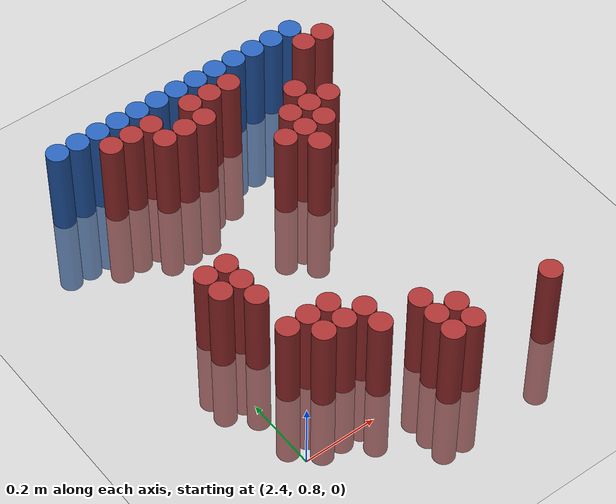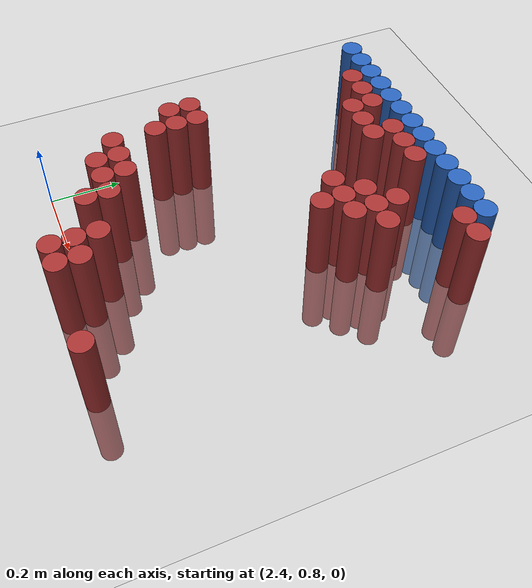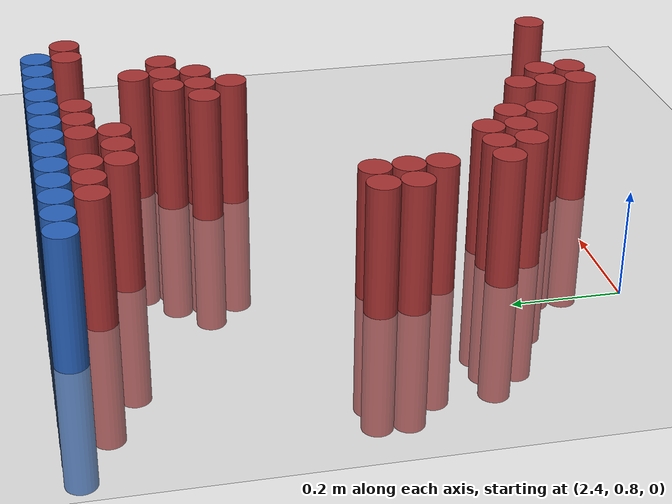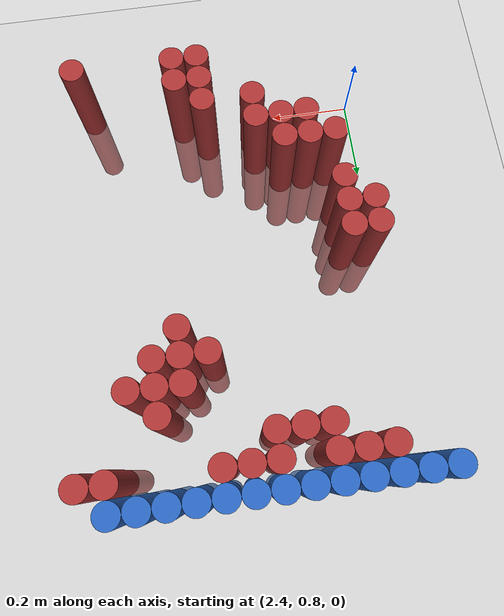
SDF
<sdf version="1.6">
 <world name="default">
  <model name="ground_plane">
   <static>1</static>
   <link name="link">
    <collision name="collision">
     <geometry><plane><normal>0 0 1</normal><size>100 100</size></plane></geometry>
     <surface><friction><ode><mu>100</mu><mu2>50</mu2></ode></friction></surface>
    </collision>
    <visual name="visual">
     <cast_shadows>0</cast_shadows>
     <geometry><plane><normal>0 0 1</normal><size>100 100</size></plane></geometry>
     <material>
      <script><uri>file://media/materials/scripts/gazebo.material</uri><name>Gazebo/Grey</name></script>
     </material>
    </visual>
   </link>
  </model>
  <model name="unit_cylinder_100">
   <static>1</static>
   <pose>2.370000 1.770000 0.000000 0.000000 0.000000 0.000000</pose>
   <link name="link">
    <inertial>
     <mass>1</mass>
     <inertia><ixx>0.145833</ixx><ixy>0</ixy><ixz>0</ixz><iyy>0.145833</iyy><iyz>0</iyz><izz>0.125</izz></inertia>
    </inertial>
    <collision name="collision">
     <geometry><cylinder><radius>0.030000</radius><length>0.5</length></cylinder></geometry>
    </collision>
    <visual name="visual">
     <geometry><cylinder><radius>0.030000</radius><length>0.5</length></cylinder></geometry>
     <material>
      <ambient>0.152000 0.379000 0.720000 1</ambient>
      <diffuse>0.152000 0.379000 0.720000 1</diffuse>
     </material>
     <material>
      <script><name>Gazebo/Grey</name><uri>file://media/materials/scripts/gazebo.material</uri></script>
     </material>
    </visual>
   </link>
  </model>
  <model name="unit_cylinder_101">
   <static>1</static>
   <pose>2.430000 1.770000 0.000000 0.000000 0.000000 0.000000</pose>
   <link name="link">
    <inertial>
     <mass>1</mass>
     <inertia><ixx>0.145833</ixx><ixy>0</ixy><ixz>0</ixz><iyy>0.145833</iyy><iyz>0</iyz><izz>0.125</izz></inertia>
    </inertial>
    <collision name="collision">
     <geometry><cylinder><radius>0.030000</radius><length>0.5</length></cylinder></geometry>
    </collision>
    <visual name="visual">
     <geometry><cylinder><radius>0.030000</radius><length>0.5</length></cylinder></geometry>
     <material>
      <ambient>0.152000 0.379000 0.720000 1</ambient>
      <diffuse>0.152000 0.379000 0.720000 1</diffuse>
     </material>
     <material>
      <script><name>Gazebo/Grey</name><uri>file://media/materials/scripts/gazebo.material</uri></script>
     </material>
    </visual>
   </link>
  </model>
  <model name="unit_cylinder_102">
   <static>1</static>
   <pose>2.490000 1.770000 0.000000 0.000000 0.000000 0.000000</pose>
   <link name="link">
    <inertial>
     <mass>1</mass>
     <inertia><ixx>0.145833</ixx><ixy>0</ixy><ixz>0</ixz><iyy>0.145833</iyy><iyz>0</iyz><izz>0.125</izz></inertia>
    </inertial>
    <collision name="collision">
     <geometry><cylinder><radius>0.030000</radius><length>0.5</length></cylinder></geometry>
    </collision>
    <visual name="visual">
     <geometry><cylinder><radius>0.030000</radius><length>0.5</length></cylinder></geometry>
     <material>
      <ambient>0.152000 0.379000 0.720000 1</ambient>
      <diffuse>0.152000 0.379000 0.720000 1</diffuse>
     </material>
     <material>
      <script><name>Gazebo/Grey</name><uri>file://media/materials/scripts/gazebo.material</uri></script>
     </material>
    </visual>
   </link>
  </model>
  <model name="unit_cylinder_103">
   <static>1</static>
   <pose>2.550000 1.770000 0.000000 0.000000 0.000000 0.000000</pose>
   <link name="link">
    <inertial>
     <mass>1</mass>
     <inertia><ixx>0.145833</ixx><ixy>0</ixy><ixz>0</ixz><iyy>0.145833</iyy><iyz>0</iyz><izz>0.125</izz></inertia>
    </inertial>
    <collision name="collision">
     <geometry><cylinder><radius>0.030000</radius><length>0.5</length></cylinder></geometry>
    </collision>
    <visual name="visual">
     <geometry><cylinder><radius>0.030000</radius><length>0.5</length></cylinder></geometry>
     <material>
      <ambient>0.152000 0.379000 0.720000 1</ambient>
      <diffuse>0.152000 0.379000 0.720000 1</diffuse>
     </material>
     <material>
      <script><name>Gazebo/Grey</name><uri>file://media/materials/scripts/gazebo.material</uri></script>
     </material>
    </visual>
   </link>
  </model>
  <model name="unit_cylinder_104">
   <static>1</static>
   <pose>2.610000 1.770000 0.000000 0.000000 0.000000 0.000000</pose>
   <link name="link">
    <inertial>
     <mass>1</mass>
     <inertia><ixx>0.145833</ixx><ixy>0</ixy><ixz>0</ixz><iyy>0.145833</iyy><iyz>0</iyz><izz>0.125</izz></inertia>
    </inertial>
    <collision name="collision">
     <geometry><cylinder><radius>0.030000</radius><length>0.5</length></cylinder></geometry>
    </collision>
    <visual name="visual">
     <geometry><cylinder><radius>0.030000</radius><length>0.5</length></cylinder></geometry>
     <material>
      <ambient>0.152000 0.379000 0.720000 1</ambient>
      <diffuse>0.152000 0.379000 0.720000 1</diffuse>
     </material>
     <material>
      <script><name>Gazebo/Grey</name><uri>file://media/materials/scripts/gazebo.material</uri></script>
     </material>
    </visual>
   </link>
  </model>
  <model name="unit_cylinder_105">
   <static>1</static>
   <pose>2.670000 1.770000 0.000000 0.000000 0.000000 0.000000</pose>
   <link name="link">
    <inertial>
     <mass>1</mass>
     <inertia><ixx>0.145833</ixx><ixy>0</ixy><ixz>0</ixz><iyy>0.145833</iyy><iyz>0</iyz><izz>0.125</izz></inertia>
    </inertial>
    <collision name="collision">
     <geometry><cylinder><radius>0.030000</radius><length>0.5</length></cylinder></geometry>
    </collision>
    <visual name="visual">
     <geometry><cylinder><radius>0.030000</radius><length>0.5</length></cylinder></geometry>
     <material>
      <ambient>0.152000 0.379000 0.720000 1</ambient>
      <diffuse>0.152000 0.379000 0.720000 1</diffuse>
     </material>
     <material>
      <script><name>Gazebo/Grey</name><uri>file://media/materials/scripts/gazebo.material</uri></script>
     </material>
    </visual>
   </link>
  </model>
  <model name="unit_cylinder_106">
   <static>1</static>
   <pose>2.730000 1.770000 0.000000 0.000000 0.000000 0.000000</pose>
   <link name="link">
    <inertial>
     <mass>1</mass>
     <inertia><ixx>0.145833</ixx><ixy>0</ixy><ixz>0</ixz><iyy>0.145833</iyy><iyz>0</iyz><izz>0.125</izz></inertia>
    </inertial>
    <collision name="collision">
     <geometry><cylinder><radius>0.030000</radius><length>0.5</length></cylinder></geometry>
    </collision>
    <visual name="visual">
     <geometry><cylinder><radius>0.030000</radius><length>0.5</length></cylinder></geometry>
     <material>
      <ambient>0.152000 0.379000 0.720000 1</ambient>
      <diffuse>0.152000 0.379000 0.720000 1</diffuse>
     </material>
     <material>
      <script><name>Gazebo/Grey</name><uri>file://media/materials/scripts/gazebo.material</uri></script>
     </material>
    </visual>
   </link>
  </model>
  <model name="unit_cylinder_107">
   <static>1</static>
   <pose>2.790000 1.770000 0.000000 0.000000 0.000000 0.000000</pose>
   <link name="link">
    <inertial>
     <mass>1</mass>
     <inertia><ixx>0.145833</ixx><ixy>0</ixy><ixz>0</ixz><iyy>0.145833</iyy><iyz>0</iyz><izz>0.125</izz></inertia>
    </inertial>
    <collision name="collision">
     <geometry><cylinder><radius>0.030000</radius><length>0.5</length></cylinder></geometry>
    </collision>
    <visual name="visual">
     <geometry><cylinder><radius>0.030000</radius><length>0.5</length></cylinder></geometry>
     <material>
      <ambient>0.152000 0.379000 0.720000 1</ambient>
      <diffuse>0.152000 0.379000 0.720000 1</diffuse>
     </material>
     <material>
      <script><name>Gazebo/Grey</name><uri>file://media/materials/scripts/gazebo.material</uri></script>
     </material>
    </visual>
   </link>
  </model>
  <model name="unit_cylinder_108">
   <static>1</static>
   <pose>2.850000 1.770000 0.000000 0.000000 0.000000 0.000000</pose>
   <link name="link">
    <inertial>
     <mass>1</mass>
     <inertia><ixx>0.145833</ixx><ixy>0</ixy><ixz>0</ixz><iyy>0.145833</iyy><iyz>0</iyz><izz>0.125</izz></inertia>
    </inertial>
    <collision name="collision">
     <geometry><cylinder><radius>0.030000</radius><length>0.5</length></cylinder></geometry>
    </collision>
    <visual name="visual">
     <geometry><cylinder><radius>0.030000</radius><length>0.5</length></cylinder></geometry>
     <material>
      <ambient>0.152000 0.379000 0.720000 1</ambient>
      <diffuse>0.152000 0.379000 0.720000 1</diffuse>
     </material>
     <material>
      <script><name>Gazebo/Grey</name><uri>file://media/materials/scripts/gazebo.material</uri></script>
     </material>
    </visual>
   </link>
  </model>
  <model name="unit_cylinder_109">
   <static>1</static>
   <pose>2.910000 1.770000 0.000000 0.000000 0.000000 0.000000</pose>
   <link name="link">
    <inertial>
     <mass>1</mass>
     <inertia><ixx>0.145833</ixx><ixy>0</ixy><ixz>0</ixz><iyy>0.145833</iyy><iyz>0</iyz><izz>0.125</izz></inertia>
    </inertial>
    <collision name="collision">
     <geometry><cylinder><radius>0.030000</radius><length>0.5</length></cylinder></geometry>
    </collision>
    <visual name="visual">
     <geometry><cylinder><radius>0.030000</radius><length>0.5</length></cylinder></geometry>
     <material>
      <ambient>0.152000 0.379000 0.720000 1</ambient>
      <diffuse>0.152000 0.379000 0.720000 1</diffuse>
     </material>
     <material>
      <script><name>Gazebo/Grey</name><uri>file://media/materials/scripts/gazebo.material</uri></script>
     </material>
    </visual>
   </link>
  </model>
  <model name="unit_cylinder_110">
   <static>1</static>
   <pose>2.970000 1.770000 0.000000 0.000000 0.000000 0.000000</pose>
   <link name="link">
    <inertial>
     <mass>1</mass>
     <inertia><ixx>0.145833</ixx><ixy>0</ixy><ixz>0</ixz><iyy>0.145833</iyy><iyz>0</iyz><izz>0.125</izz></inertia>
    </inertial>
    <collision name="collision">
     <geometry><cylinder><radius>0.030000</radius><length>0.5</length></cylinder></geometry>
    </collision>
    <visual name="visual">
     <geometry><cylinder><radius>0.030000</radius><length>0.5</length></cylinder></geometry>
     <material>
      <ambient>0.152000 0.379000 0.720000 1</ambient>
      <diffuse>0.152000 0.379000 0.720000 1</diffuse>
     </material>
     <material>
      <script><name>Gazebo/Grey</name><uri>file://media/materials/scripts/gazebo.material</uri></script>
     </material>
    </visual>
   </link>
  </model>
  <model name="unit_cylinder_111">
   <static>1</static>
   <pose>3.030000 1.770000 0.000000 0.000000 0.000000 0.000000</pose>
   <link name="link">
    <inertial>
     <mass>1</mass>
     <inertia><ixx>0.145833</ixx><ixy>0</ixy><ixz>0</ixz><iyy>0.145833</iyy><iyz>0</iyz><izz>0.125</izz></inertia>
    </inertial>
    <collision name="collision">
     <geometry><cylinder><radius>0.030000</radius><length>0.5</length></cylinder></geometry>
    </collision>
    <visual name="visual">
     <geometry><cylinder><radius>0.030000</radius><length>0.5</length></cylinder></geometry>
     <material>
      <ambient>0.152000 0.379000 0.720000 1</ambient>
      <diffuse>0.152000 0.379000 0.720000 1</diffuse>
     </material>
     <material>
      <script><name>Gazebo/Grey</name><uri>file://media/materials/scripts/gazebo.material</uri></script>
     </material>
    </visual>
   </link>
  </model>
  <model name="unit_cylinder_112">
   <static>1</static>
   <pose>3.090000 1.770000 0.000000 0.000000 0.000000 0.000000</pose>
   <link name="link">
    <inertial>
     <mass>1</mass>
     <inertia><ixx>0.145833</ixx><ixy>0</ixy><ixz>0</ixz><iyy>0.145833</iyy><iyz>0</iyz><izz>0.125</izz></inertia>
    </inertial>
    <collision name="collision">
     <geometry><cylinder><radius>0.030000</radius><length>0.5</length></cylinder></geometry>
    </collision>
    <visual name="visual">
     <geometry><cylinder><radius>0.030000</radius><length>0.5</length></cylinder></geometry>
     <material>
      <ambient>0.152000 0.379000 0.720000 1</ambient>
      <diffuse>0.152000 0.379000 0.720000 1</diffuse>
     </material>
     <material>
      <script><name>Gazebo/Grey</name><uri>file://media/materials/scripts/gazebo.material</uri></script>
     </material>
    </visual>
   </link>
  </model>
  <model name="unit_cylinder_125">
   <static>1</static>
   <pose>2.490000 1.710000 0.000000 0.000000 0.000000 0.000000</pose>
   <link name="link">
    <inertial>
     <mass>1</mass>
     <inertia><ixx>0.145833</ixx><ixy>0</ixy><ixz>0</ixz><iyy>0.145833</iyy><iyz>0</iyz><izz>0.125</izz></inertia>
    </inertial>
    <collision name="collision">
     <geometry><cylinder><radius>0.030000</radius><length>0.5</length></cylinder></geometry>
    </collision>
    <visual name="visual">
     <geometry><cylinder><radius>0.030000</radius><length>0.5</length></cylinder></geometry>
     <material>
      <ambient>0.648000 0.192000 0.192000 1</ambient>
      <diffuse>0.648000 0.192000 0.192000 1</diffuse>
     </material>
     <material>
      <script><name>Gazebo/Grey</name><uri>file://media/materials/scripts/gazebo.material</uri></script>
     </material>
    </visual>
   </link>
  </model>
  <model name="unit_cylinder_126">
   <static>1</static>
   <pose>2.550000 1.710000 0.000000 0.000000 0.000000 0.000000</pose>
   <link name="link">
    <inertial>
     <mass>1</mass>
     <inertia><ixx>0.145833</ixx><ixy>0</ixy><ixz>0</ixz><iyy>0.145833</iyy><iyz>0</iyz><izz>0.125</izz></inertia>
    </inertial>
    <collision name="collision">
     <geometry><cylinder><radius>0.030000</radius><length>0.5</length></cylinder></geometry>
    </collision>
    <visual name="visual">
     <geometry><cylinder><radius>0.030000</radius><length>0.5</length></cylinder></geometry>
     <material>
      <ambient>0.648000 0.192000 0.192000 1</ambient>
      <diffuse>0.648000 0.192000 0.192000 1</diffuse>
     </material>
     <material>
      <script><name>Gazebo/Grey</name><uri>file://media/materials/scripts/gazebo.material</uri></script>
     </material>
    </visual>
   </link>
  </model>
  <model name="unit_cylinder_127">
   <static>1</static>
   <pose>2.610000 1.710000 0.000000 0.000000 0.000000 0.000000</pose>
   <link name="link">
    <inertial>
     <mass>1</mass>
     <inertia><ixx>0.145833</ixx><ixy>0</ixy><ixz>0</ixz><iyy>0.145833</iyy><iyz>0</iyz><izz>0.125</izz></inertia>
    </inertial>
    <collision name="collision">
     <geometry><cylinder><radius>0.030000</radius><length>0.5</length></cylinder></geometry>
    </collision>
    <visual name="visual">
     <geometry><cylinder><radius>0.030000</radius><length>0.5</length></cylinder></geometry>
     <material>
      <ambient>0.648000 0.192000 0.192000 1</ambient>
      <diffuse>0.648000 0.192000 0.192000 1</diffuse>
     </material>
     <material>
      <script><name>Gazebo/Grey</name><uri>file://media/materials/scripts/gazebo.material</uri></script>
     </material>
    </visual>
   </link>
  </model>
  <model name="unit_cylinder_128">
   <static>1</static>
   <pose>2.730000 1.710000 0.000000 0.000000 0.000000 0.000000</pose>
   <link name="link">
    <inertial>
     <mass>1</mass>
     <inertia><ixx>0.145833</ixx><ixy>0</ixy><ixz>0</ixz><iyy>0.145833</iyy><iyz>0</iyz><izz>0.125</izz></inertia>
    </inertial>
    <collision name="collision">
     <geometry><cylinder><radius>0.030000</radius><length>0.5</length></cylinder></geometry>
    </collision>
    <visual name="visual">
     <geometry><cylinder><radius>0.030000</radius><length>0.5</length></cylinder></geometry>
     <material>
      <ambient>0.648000 0.192000 0.192000 1</ambient>
      <diffuse>0.648000 0.192000 0.192000 1</diffuse>
     </material>
     <material>
      <script><name>Gazebo/Grey</name><uri>file://media/materials/scripts/gazebo.material</uri></script>
     </material>
    </visual>
   </link>
  </model>
  <model name="unit_cylinder_129">
   <static>1</static>
   <pose>2.790000 1.710000 0.000000 0.000000 0.000000 0.000000</pose>
   <link name="link">
    <inertial>
     <mass>1</mass>
     <inertia><ixx>0.145833</ixx><ixy>0</ixy><ixz>0</ixz><iyy>0.145833</iyy><iyz>0</iyz><izz>0.125</izz></inertia>
    </inertial>
    <collision name="collision">
     <geometry><cylinder><radius>0.030000</radius><length>0.5</length></cylinder></geometry>
    </collision>
    <visual name="visual">
     <geometry><cylinder><radius>0.030000</radius><length>0.5</length></cylinder></geometry>
     <material>
      <ambient>0.648000 0.192000 0.192000 1</ambient>
      <diffuse>0.648000 0.192000 0.192000 1</diffuse>
     </material>
     <material>
      <script><name>Gazebo/Grey</name><uri>file://media/materials/scripts/gazebo.material</uri></script>
     </material>
    </visual>
   </link>
  </model>
  <model name="unit_cylinder_130">
   <static>1</static>
   <pose>2.850000 1.710000 0.000000 0.000000 0.000000 0.000000</pose>
   <link name="link">
    <inertial>
     <mass>1</mass>
     <inertia><ixx>0.145833</ixx><ixy>0</ixy><ixz>0</ixz><iyy>0.145833</iyy><iyz>0</iyz><izz>0.125</izz></inertia>
    </inertial>
    <collision name="collision">
     <geometry><cylinder><radius>0.030000</radius><length>0.5</length></cylinder></geometry>
    </collision>
    <visual name="visual">
     <geometry><cylinder><radius>0.030000</radius><length>0.5</length></cylinder></geometry>
     <material>
      <ambient>0.648000 0.192000 0.192000 1</ambient>
      <diffuse>0.648000 0.192000 0.192000 1</diffuse>
     </material>
     <material>
      <script><name>Gazebo/Grey</name><uri>file://media/materials/scripts/gazebo.material</uri></script>
     </material>
    </visual>
   </link>
  </model>
  <model name="unit_cylinder_131">
   <static>1</static>
   <pose>3.090000 1.710000 0.000000 0.000000 0.000000 0.000000</pose>
   <link name="link">
    <inertial>
     <mass>1</mass>
     <inertia><ixx>0.145833</ixx><ixy>0</ixy><ixz>0</ixz><iyy>0.145833</iyy><iyz>0</iyz><izz>0.125</izz></inertia>
    </inertial>
    <collision name="collision">
     <geometry><cylinder><radius>0.030000</radius><length>0.5</length></cylinder></geometry>
    </collision>
    <visual name="visual">
     <geometry><cylinder><radius>0.030000</radius><length>0.5</length></cylinder></geometry>
     <material>
      <ambient>0.648000 0.192000 0.192000 1</ambient>
      <diffuse>0.648000 0.192000 0.192000 1</diffuse>
     </material>
     <material>
      <script><name>Gazebo/Grey</name><uri>file://media/materials/scripts/gazebo.material</uri></script>
     </material>
    </visual>
   </link>
  </model>
  <model name="unit_cylinder_132">
   <static>1</static>
   <pose>3.150000 1.710000 0.000000 0.000000 0.000000 0.000000</pose>
   <link name="link">
    <inertial>
     <mass>1</mass>
     <inertia><ixx>0.145833</ixx><ixy>0</ixy><ixz>0</ixz><iyy>0.145833</iyy><iyz>0</iyz><izz>0.125</izz></inertia>
    </inertial>
    <collision name="collision">
     <geometry><cylinder><radius>0.030000</radius><length>0.5</length></cylinder></geometry>
    </collision>
    <visual name="visual">
     <geometry><cylinder><radius>0.030000</radius><length>0.5</length></cylinder></geometry>
     <material>
      <ambient>0.648000 0.192000 0.192000 1</ambient>
      <diffuse>0.648000 0.192000 0.192000 1</diffuse>
     </material>
     <material>
      <script><name>Gazebo/Grey</name><uri>file://media/materials/scripts/gazebo.material</uri></script>
     </material>
    </visual>
   </link>
  </model>
  <model name="unit_cylinder_138">
   <static>1</static>
   <pose>2.610000 1.650000 0.000000 0.000000 0.000000 0.000000</pose>
   <link name="link">
    <inertial>
     <mass>1</mass>
     <inertia><ixx>0.145833</ixx><ixy>0</ixy><ixz>0</ixz><iyy>0.145833</iyy><iyz>0</iyz><izz>0.125</izz></inertia>
    </inertial>
    <collision name="collision">
     <geometry><cylinder><radius>0.030000</radius><length>0.5</length></cylinder></geometry>
    </collision>
    <visual name="visual">
     <geometry><cylinder><radius>0.030000</radius><length>0.5</length></cylinder></geometry>
     <material>
      <ambient>0.648000 0.192000 0.192000 1</ambient>
      <diffuse>0.648000 0.192000 0.192000 1</diffuse>
     </material>
     <material>
      <script><name>Gazebo/Grey</name><uri>file://media/materials/scripts/gazebo.material</uri></script>
     </material>
    </visual>
   </link>
  </model>
  <model name="unit_cylinder_139">
   <static>1</static>
   <pose>2.670000 1.650000 0.000000 0.000000 0.000000 0.000000</pose>
   <link name="link">
    <inertial>
     <mass>1</mass>
     <inertia><ixx>0.145833</ixx><ixy>0</ixy><ixz>0</ixz><iyy>0.145833</iyy><iyz>0</iyz><izz>0.125</izz></inertia>
    </inertial>
    <collision name="collision">
     <geometry><cylinder><radius>0.030000</radius><length>0.5</length></cylinder></geometry>
    </collision>
    <visual name="visual">
     <geometry><cylinder><radius>0.030000</radius><length>0.5</length></cylinder></geometry>
     <material>
      <ambient>0.648000 0.192000 0.192000 1</ambient>
      <diffuse>0.648000 0.192000 0.192000 1</diffuse>
     </material>
     <material>
      <script><name>Gazebo/Grey</name><uri>file://media/materials/scripts/gazebo.material</uri></script>
     </material>
    </visual>
   </link>
  </model>
  <model name="unit_cylinder_140">
   <static>1</static>
   <pose>2.730000 1.650000 0.000000 0.000000 0.000000 0.000000</pose>
   <link name="link">
    <inertial>
     <mass>1</mass>
     <inertia><ixx>0.145833</ixx><ixy>0</ixy><ixz>0</ixz><iyy>0.145833</iyy><iyz>0</iyz><izz>0.125</izz></inertia>
    </inertial>
    <collision name="collision">
     <geometry><cylinder><radius>0.030000</radius><length>0.5</length></cylinder></geometry>
    </collision>
    <visual name="visual">
     <geometry><cylinder><radius>0.030000</radius><length>0.5</length></cylinder></geometry>
     <material>
      <ambient>0.648000 0.192000 0.192000 1</ambient>
      <diffuse>0.648000 0.192000 0.192000 1</diffuse>
     </material>
     <material>
      <script><name>Gazebo/Grey</name><uri>file://media/materials/scripts/gazebo.material</uri></script>
     </material>
    </visual>
   </link>
  </model>
  <model name="unit_cylinder_144">
   <static>1</static>
   <pose>2.970000 1.590000 0.000000 0.000000 0.000000 0.000000</pose>
   <link name="link">
    <inertial>
     <mass>1</mass>
     <inertia><ixx>0.145833</ixx><ixy>0</ixy><ixz>0</ixz><iyy>0.145833</iyy><iyz>0</iyz><izz>0.125</izz></inertia>
    </inertial>
    <collision name="collision">
     <geometry><cylinder><radius>0.030000</radius><length>0.5</length></cylinder></geometry>
    </collision>
    <visual name="visual">
     <geometry><cylinder><radius>0.030000</radius><length>0.5</length></cylinder></geometry>
     <material>
      <ambient>0.648000 0.192000 0.192000 1</ambient>
      <diffuse>0.648000 0.192000 0.192000 1</diffuse>
     </material>
     <material>
      <script><name>Gazebo/Grey</name><uri>file://media/materials/scripts/gazebo.material</uri></script>
     </material>
    </visual>
   </link>
  </model>
  <model name="unit_cylinder_147">
   <static>1</static>
   <pose>2.910000 1.530000 0.000000 0.000000 0.000000 0.000000</pose>
   <link name="link">
    <inertial>
     <mass>1</mass>
     <inertia><ixx>0.145833</ixx><ixy>0</ixy><ixz>0</ixz><iyy>0.145833</iyy><iyz>0</iyz><izz>0.125</izz></inertia>
    </inertial>
    <collision name="collision">
     <geometry><cylinder><radius>0.030000</radius><length>0.5</length></cylinder></geometry>
    </collision>
    <visual name="visual">
     <geometry><cylinder><radius>0.030000</radius><length>0.5</length></cylinder></geometry>
     <material>
      <ambient>0.648000 0.192000 0.192000 1</ambient>
      <diffuse>0.648000 0.192000 0.192000 1</diffuse>
     </material>
     <material>
      <script><name>Gazebo/Grey</name><uri>file://media/materials/scripts/gazebo.material</uri></script>
     </material>
    </visual>
   </link>
  </model>
  <model name="unit_cylinder_148">
   <static>1</static>
   <pose>2.970000 1.530000 0.000000 0.000000 0.000000 0.000000</pose>
   <link name="link">
    <inertial>
     <mass>1</mass>
     <inertia><ixx>0.145833</ixx><ixy>0</ixy><ixz>0</ixz><iyy>0.145833</iyy><iyz>0</iyz><izz>0.125</izz></inertia>
    </inertial>
    <collision name="collision">
     <geometry><cylinder><radius>0.030000</radius><length>0.5</length></cylinder></geometry>
    </collision>
    <visual name="visual">
     <geometry><cylinder><radius>0.030000</radius><length>0.5</length></cylinder></geometry>
     <material>
      <ambient>0.648000 0.192000 0.192000 1</ambient>
      <diffuse>0.648000 0.192000 0.192000 1</diffuse>
     </material>
     <material>
      <script><name>Gazebo/Grey</name><uri>file://media/materials/scripts/gazebo.material</uri></script>
     </material>
    </visual>
   </link>
  </model>
  <model name="unit_cylinder_149">
   <static>1</static>
   <pose>3.030000 1.530000 0.000000 0.000000 0.000000 0.000000</pose>
   <link name="link">
    <inertial>
     <mass>1</mass>
     <inertia><ixx>0.145833</ixx><ixy>0</ixy><ixz>0</ixz><iyy>0.145833</iyy><iyz>0</iyz><izz>0.125</izz></inertia>
    </inertial>
    <collision name="collision">
     <geometry><cylinder><radius>0.030000</radius><length>0.5</length></cylinder></geometry>
    </collision>
    <visual name="visual">
     <geometry><cylinder><radius>0.030000</radius><length>0.5</length></cylinder></geometry>
     <material>
      <ambient>0.648000 0.192000 0.192000 1</ambient>
      <diffuse>0.648000 0.192000 0.192000 1</diffuse>
     </material>
     <material>
      <script><name>Gazebo/Grey</name><uri>file://media/materials/scripts/gazebo.material</uri></script>
     </material>
    </visual>
   </link>
  </model>
  <model name="unit_cylinder_150">
   <static>1</static>
   <pose>2.850000 1.470000 0.000000 0.000000 0.000000 0.000000</pose>
   <link name="link">
    <inertial>
     <mass>1</mass>
     <inertia><ixx>0.145833</ixx><ixy>0</ixy><ixz>0</ixz><iyy>0.145833</iyy><iyz>0</iyz><izz>0.125</izz></inertia>
    </inertial>
    <collision name="collision">
     <geometry><cylinder><radius>0.030000</radius><length>0.5</length></cylinder></geometry>
    </collision>
    <visual name="visual">
     <geometry><cylinder><radius>0.030000</radius><length>0.5</length></cylinder></geometry>
     <material>
      <ambient>0.648000 0.192000 0.192000 1</ambient>
      <diffuse>0.648000 0.192000 0.192000 1</diffuse>
     </material>
     <material>
      <script><name>Gazebo/Grey</name><uri>file://media/materials/scripts/gazebo.material</uri></script>
     </material>
    </visual>
   </link>
  </model>
  <model name="unit_cylinder_151">
   <static>1</static>
   <pose>2.910000 1.470000 0.000000 0.000000 0.000000 0.000000</pose>
   <link name="link">
    <inertial>
     <mass>1</mass>
     <inertia><ixx>0.145833</ixx><ixy>0</ixy><ixz>0</ixz><iyy>0.145833</iyy><iyz>0</iyz><izz>0.125</izz></inertia>
    </inertial>
    <collision name="collision">
     <geometry><cylinder><radius>0.030000</radius><length>0.5</length></cylinder></geometry>
    </collision>
    <visual name="visual">
     <geometry><cylinder><radius>0.030000</radius><length>0.5</length></cylinder></geometry>
     <material>
      <ambient>0.648000 0.192000 0.192000 1</ambient>
      <diffuse>0.648000 0.192000 0.192000 1</diffuse>
     </material>
     <material>
      <script><name>Gazebo/Grey</name><uri>file://media/materials/scripts/gazebo.material</uri></script>
     </material>
    </visual>
   </link>
  </model>
  <model name="unit_cylinder_152">
   <static>1</static>
   <pose>2.970000 1.470000 0.000000 0.000000 0.000000 0.000000</pose>
   <link name="link">
    <inertial>
     <mass>1</mass>
     <inertia><ixx>0.145833</ixx><ixy>0</ixy><ixz>0</ixz><iyy>0.145833</iyy><iyz>0</iyz><izz>0.125</izz></inertia>
    </inertial>
    <collision name="collision">
     <geometry><cylinder><radius>0.030000</radius><length>0.5</length></cylinder></geometry>
    </collision>
    <visual name="visual">
     <geometry><cylinder><radius>0.030000</radius><length>0.5</length></cylinder></geometry>
     <material>
      <ambient>0.648000 0.192000 0.192000 1</ambient>
      <diffuse>0.648000 0.192000 0.192000 1</diffuse>
     </material>
     <material>
      <script><name>Gazebo/Grey</name><uri>file://media/materials/scripts/gazebo.material</uri></script>
     </material>
    </visual>
   </link>
  </model>
  <model name="unit_cylinder_153">
   <static>1</static>
   <pose>2.910000 1.410000 0.000000 0.000000 0.000000 0.000000</pose>
   <link name="link">
    <inertial>
     <mass>1</mass>
     <inertia><ixx>0.145833</ixx><ixy>0</ixy><ixz>0</ixz><iyy>0.145833</iyy><iyz>0</iyz><izz>0.125</izz></inertia>
    </inertial>
    <collision name="collision">
     <geometry><cylinder><radius>0.030000</radius><length>0.5</length></cylinder></geometry>
    </collision>
    <visual name="visual">
     <geometry><cylinder><radius>0.030000</radius><length>0.5</length></cylinder></geometry>
     <material>
      <ambient>0.648000 0.192000 0.192000 1</ambient>
      <diffuse>0.648000 0.192000 0.192000 1</diffuse>
     </material>
     <material>
      <script><name>Gazebo/Grey</name><uri>file://media/materials/scripts/gazebo.material</uri></script>
     </material>
    </visual>
   </link>
  </model>
  <model name="unit_cylinder_157">
   <static>1</static>
   <pose>2.430000 1.230000 0.000000 0.000000 0.000000 0.000000</pose>
   <link name="link">
    <inertial>
     <mass>1</mass>
     <inertia><ixx>0.145833</ixx><ixy>0</ixy><ixz>0</ixz><iyy>0.145833</iyy><iyz>0</iyz><izz>0.125</izz></inertia>
    </inertial>
    <collision name="collision">
     <geometry><cylinder><radius>0.030000</radius><length>0.5</length></cylinder></geometry>
    </collision>
    <visual name="visual">
     <geometry><cylinder><radius>0.030000</radius><length>0.5</length></cylinder></geometry>
     <material>
      <ambient>0.648000 0.192000 0.192000 1</ambient>
      <diffuse>0.648000 0.192000 0.192000 1</diffuse>
     </material>
     <material>
      <script><name>Gazebo/Grey</name><uri>file://media/materials/scripts/gazebo.material</uri></script>
     </material>
    </visual>
   </link>
  </model>
  <model name="unit_cylinder_158">
   <static>1</static>
   <pose>2.490000 1.230000 0.000000 0.000000 0.000000 0.000000</pose>
   <link name="link">
    <inertial>
     <mass>1</mass>
     <inertia><ixx>0.145833</ixx><ixy>0</ixy><ixz>0</ixz><iyy>0.145833</iyy><iyz>0</iyz><izz>0.125</izz></inertia>
    </inertial>
    <collision name="collision">
     <geometry><cylinder><radius>0.030000</radius><length>0.5</length></cylinder></geometry>
    </collision>
    <visual name="visual">
     <geometry><cylinder><radius>0.030000</radius><length>0.5</length></cylinder></geometry>
     <material>
      <ambient>0.648000 0.192000 0.192000 1</ambient>
      <diffuse>0.648000 0.192000 0.192000 1</diffuse>
     </material>
     <material>
      <script><name>Gazebo/Grey</name><uri>file://media/materials/scripts/gazebo.material</uri></script>
     </material>
    </visual>
   </link>
  </model>
  <model name="unit_cylinder_164">
   <static>1</static>
   <pose>2.430000 1.170000 0.000000 0.000000 0.000000 0.000000</pose>
   <link name="link">
    <inertial>
     <mass>1</mass>
     <inertia><ixx>0.145833</ixx><ixy>0</ixy><ixz>0</ixz><iyy>0.145833</iyy><iyz>0</iyz><izz>0.125</izz></inertia>
    </inertial>
    <collision name="collision">
     <geometry><cylinder><radius>0.030000</radius><length>0.5</length></cylinder></geometry>
    </collision>
    <visual name="visual">
     <geometry><cylinder><radius>0.030000</radius><length>0.5</length></cylinder></geometry>
     <material>
      <ambient>0.648000 0.192000 0.192000 1</ambient>
      <diffuse>0.648000 0.192000 0.192000 1</diffuse>
     </material>
     <material>
      <script><name>Gazebo/Grey</name><uri>file://media/materials/scripts/gazebo.material</uri></script>
     </material>
    </visual>
   </link>
  </model>
  <model name="unit_cylinder_165">
   <static>1</static>
   <pose>2.490000 1.170000 0.000000 0.000000 0.000000 0.000000</pose>
   <link name="link">
    <inertial>
     <mass>1</mass>
     <inertia><ixx>0.145833</ixx><ixy>0</ixy><ixz>0</ixz><iyy>0.145833</iyy><iyz>0</iyz><izz>0.125</izz></inertia>
    </inertial>
    <collision name="collision">
     <geometry><cylinder><radius>0.030000</radius><length>0.5</length></cylinder></geometry>
    </collision>
    <visual name="visual">
     <geometry><cylinder><radius>0.030000</radius><length>0.5</length></cylinder></geometry>
     <material>
      <ambient>0.648000 0.192000 0.192000 1</ambient>
      <diffuse>0.648000 0.192000 0.192000 1</diffuse>
     </material>
     <material>
      <script><name>Gazebo/Grey</name><uri>file://media/materials/scripts/gazebo.material</uri></script>
     </material>
    </visual>
   </link>
  </model>
  <model name="unit_cylinder_172">
   <static>1</static>
   <pose>2.490000 1.110000 0.000000 0.000000 0.000000 0.000000</pose>
   <link name="link">
    <inertial>
     <mass>1</mass>
     <inertia><ixx>0.145833</ixx><ixy>0</ixy><ixz>0</ixz><iyy>0.145833</iyy><iyz>0</iyz><izz>0.125</izz></inertia>
    </inertial>
    <collision name="collision">
     <geometry><cylinder><radius>0.030000</radius><length>0.5</length></cylinder></geometry>
    </collision>
    <visual name="visual">
     <geometry><cylinder><radius>0.030000</radius><length>0.5</length></cylinder></geometry>
     <material>
      <ambient>0.648000 0.192000 0.192000 1</ambient>
      <diffuse>0.648000 0.192000 0.192000 1</diffuse>
     </material>
     <material>
      <script><name>Gazebo/Grey</name><uri>file://media/materials/scripts/gazebo.material</uri></script>
     </material>
    </visual>
   </link>
  </model>
  <model name="unit_cylinder_182">
   <static>1</static>
   <pose>2.490000 0.990000 0.000000 0.000000 0.000000 0.000000</pose>
   <link name="link">
    <inertial>
     <mass>1</mass>
     <inertia><ixx>0.145833</ixx><ixy>0</ixy><ixz>0</ixz><iyy>0.145833</iyy><iyz>0</iyz><izz>0.125</izz></inertia>
    </inertial>
    <collision name="collision">
     <geometry><cylinder><radius>0.030000</radius><length>0.5</length></cylinder></geometry>
    </collision>
    <visual name="visual">
     <geometry><cylinder><radius>0.030000</radius><length>0.5</length></cylinder></geometry>
     <material>
      <ambient>0.648000 0.192000 0.192000 1</ambient>
      <diffuse>0.648000 0.192000 0.192000 1</diffuse>
     </material>
     <material>
      <script><name>Gazebo/Grey</name><uri>file://media/materials/scripts/gazebo.material</uri></script>
     </material>
    </visual>
   </link>
  </model>
  <model name="unit_cylinder_183">
   <static>1</static>
   <pose>2.550000 0.990000 0.000000 0.000000 0.000000 0.000000</pose>
   <link name="link">
    <inertial>
     <mass>1</mass>
     <inertia><ixx>0.145833</ixx><ixy>0</ixy><ixz>0</ixz><iyy>0.145833</iyy><iyz>0</iyz><izz>0.125</izz></inertia>
    </inertial>
    <collision name="collision">
     <geometry><cylinder><radius>0.030000</radius><length>0.5</length></cylinder></geometry>
    </collision>
    <visual name="visual">
     <geometry><cylinder><radius>0.030000</radius><length>0.5</length></cylinder></geometry>
     <material>
      <ambient>0.648000 0.192000 0.192000 1</ambient>
      <diffuse>0.648000 0.192000 0.192000 1</diffuse>
     </material>
     <material>
      <script><name>Gazebo/Grey</name><uri>file://media/materials/scripts/gazebo.material</uri></script>
     </material>
    </visual>
   </link>
  </model>
  <model name="unit_cylinder_184">
   <static>1</static>
   <pose>2.610000 0.990000 0.000000 0.000000 0.000000 0.000000</pose>
   <link name="link">
    <inertial>
     <mass>1</mass>
     <inertia><ixx>0.145833</ixx><ixy>0</ixy><ixz>0</ixz><iyy>0.145833</iyy><iyz>0</iyz><izz>0.125</izz></inertia>
    </inertial>
    <collision name="collision">
     <geometry><cylinder><radius>0.030000</radius><length>0.5</length></cylinder></geometry>
    </collision>
    <visual name="visual">
     <geometry><cylinder><radius>0.030000</radius><length>0.5</length></cylinder></geometry>
     <material>
      <ambient>0.648000 0.192000 0.192000 1</ambient>
      <diffuse>0.648000 0.192000 0.192000 1</diffuse>
     </material>
     <material>
      <script><name>Gazebo/Grey</name><uri>file://media/materials/scripts/gazebo.material</uri></script>
     </material>
    </visual>
   </link>
  </model>
  <model name="unit_cylinder_195">
   <static>1</static>
   <pose>2.550000 0.930000 0.000000 0.000000 0.000000 0.000000</pose>
   <link name="link">
    <inertial>
     <mass>1</mass>
     <inertia><ixx>0.145833</ixx><ixy>0</ixy><ixz>0</ixz><iyy>0.145833</iyy><iyz>0</iyz><izz>0.125</izz></inertia>
    </inertial>
    <collision name="collision">
     <geometry><cylinder><radius>0.030000</radius><length>0.5</length></cylinder></geometry>
    </collision>
    <visual name="visual">
     <geometry><cylinder><radius>0.030000</radius><length>0.5</length></cylinder></geometry>
     <material>
      <ambient>0.648000 0.192000 0.192000 1</ambient>
      <diffuse>0.648000 0.192000 0.192000 1</diffuse>
     </material>
     <material>
      <script><name>Gazebo/Grey</name><uri>file://media/materials/scripts/gazebo.material</uri></script>
     </material>
    </visual>
   </link>
  </model>
  <model name="unit_cylinder_196">
   <static>1</static>
   <pose>2.610000 0.930000 0.000000 0.000000 0.000000 0.000000</pose>
   <link name="link">
    <inertial>
     <mass>1</mass>
     <inertia><ixx>0.145833</ixx><ixy>0</ixy><ixz>0</ixz><iyy>0.145833</iyy><iyz>0</iyz><izz>0.125</izz></inertia>
    </inertial>
    <collision name="collision">
     <geometry><cylinder><radius>0.030000</radius><length>0.5</length></cylinder></geometry>
    </collision>
    <visual name="visual">
     <geometry><cylinder><radius>0.030000</radius><length>0.5</length></cylinder></geometry>
     <material>
      <ambient>0.648000 0.192000 0.192000 1</ambient>
      <diffuse>0.648000 0.192000 0.192000 1</diffuse>
     </material>
     <material>
      <script><name>Gazebo/Grey</name><uri>file://media/materials/scripts/gazebo.material</uri></script>
     </material>
    </visual>
   </link>
  </model>
  <model name="unit_cylinder_197">
   <static>1</static>
   <pose>2.670000 0.930000 0.000000 0.000000 0.000000 0.000000</pose>
   <link name="link">
    <inertial>
     <mass>1</mass>
     <inertia><ixx>0.145833</ixx><ixy>0</ixy><ixz>0</ixz><iyy>0.145833</iyy><iyz>0</iyz><izz>0.125</izz></inertia>
    </inertial>
    <collision name="collision">
     <geometry><cylinder><radius>0.030000</radius><length>0.5</length></cylinder></geometry>
    </collision>
    <visual name="visual">
     <geometry><cylinder><radius>0.030000</radius><length>0.5</length></cylinder></geometry>
     <material>
      <ambient>0.648000 0.192000 0.192000 1</ambient>
      <diffuse>0.648000 0.192000 0.192000 1</diffuse>
     </material>
     <material>
      <script><name>Gazebo/Grey</name><uri>file://media/materials/scripts/gazebo.material</uri></script>
     </material>
    </visual>
   </link>
  </model>
  <model name="unit_cylinder_204">
   <static>1</static>
   <pose>2.670000 0.870000 0.000000 0.000000 0.000000 0.000000</pose>
   <link name="link">
    <inertial>
     <mass>1</mass>
     <inertia><ixx>0.145833</ixx><ixy>0</ixy><ixz>0</ixz><iyy>0.145833</iyy><iyz>0</iyz><izz>0.125</izz></inertia>
    </inertial>
    <collision name="collision">
     <geometry><cylinder><radius>0.030000</radius><length>0.5</length></cylinder></geometry>
    </collision>
    <visual name="visual">
     <geometry><cylinder><radius>0.030000</radius><length>0.5</length></cylinder></geometry>
     <material>
      <ambient>0.648000 0.192000 0.192000 1</ambient>
      <diffuse>0.648000 0.192000 0.192000 1</diffuse>
     </material>
     <material>
      <script><name>Gazebo/Grey</name><uri>file://media/materials/scripts/gazebo.material</uri></script>
     </material>
    </visual>
   </link>
  </model>
  <model name="unit_cylinder_205">
   <static>1</static>
   <pose>2.790000 0.870000 0.000000 0.000000 0.000000 0.000000</pose>
   <link name="link">
    <inertial>
     <mass>1</mass>
     <inertia><ixx>0.145833</ixx><ixy>0</ixy><ixz>0</ixz><iyy>0.145833</iyy><iyz>0</iyz><izz>0.125</izz></inertia>
    </inertial>
    <collision name="collision">
     <geometry><cylinder><radius>0.030000</radius><length>0.5</length></cylinder></geometry>
    </collision>
    <visual name="visual">
     <geometry><cylinder><radius>0.030000</radius><length>0.5</length></cylinder></geometry>
     <material>
      <ambient>0.648000 0.192000 0.192000 1</ambient>
      <diffuse>0.648000 0.192000 0.192000 1</diffuse>
     </material>
     <material>
      <script><name>Gazebo/Grey</name><uri>file://media/materials/scripts/gazebo.material</uri></script>
     </material>
    </visual>
   </link>
  </model>
  <model name="unit_cylinder_212">
   <static>1</static>
   <pose>2.790000 0.810000 0.000000 0.000000 0.000000 0.000000</pose>
   <link name="link">
    <inertial>
     <mass>1</mass>
     <inertia><ixx>0.145833</ixx><ixy>0</ixy><ixz>0</ixz><iyy>0.145833</iyy><iyz>0</iyz><izz>0.125</izz></inertia>
    </inertial>
    <collision name="collision">
     <geometry><cylinder><radius>0.030000</radius><length>0.5</length></cylinder></geometry>
    </collision>
    <visual name="visual">
     <geometry><cylinder><radius>0.030000</radius><length>0.5</length></cylinder></geometry>
     <material>
      <ambient>0.648000 0.192000 0.192000 1</ambient>
      <diffuse>0.648000 0.192000 0.192000 1</diffuse>
     </material>
     <material>
      <script><name>Gazebo/Grey</name><uri>file://media/materials/scripts/gazebo.material</uri></script>
     </material>
    </visual>
   </link>
  </model>
  <model name="unit_cylinder_213">
   <static>1</static>
   <pose>2.850000 0.810000 0.000000 0.000000 0.000000 0.000000</pose>
   <link name="link">
    <inertial>
     <mass>1</mass>
     <inertia><ixx>0.145833</ixx><ixy>0</ixy><ixz>0</ixz><iyy>0.145833</iyy><iyz>0</iyz><izz>0.125</izz></inertia>
    </inertial>
    <collision name="collision">
     <geometry><cylinder><radius>0.030000</radius><length>0.5</length></cylinder></geometry>
    </collision>
    <visual name="visual">
     <geometry><cylinder><radius>0.030000</radius><length>0.5</length></cylinder></geometry>
     <material>
      <ambient>0.648000 0.192000 0.192000 1</ambient>
      <diffuse>0.648000 0.192000 0.192000 1</diffuse>
     </material>
     <material>
      <script><name>Gazebo/Grey</name><uri>file://media/materials/scripts/gazebo.material</uri></script>
     </material>
    </visual>
   </link>
  </model>
  <model name="unit_cylinder_221">
   <static>1</static>
   <pose>2.790000 0.750000 0.000000 0.000000 0.000000 0.000000</pose>
   <link name="link">
    <inertial>
     <mass>1</mass>
     <inertia><ixx>0.145833</ixx><ixy>0</ixy><ixz>0</ixz><iyy>0.145833</iyy><iyz>0</iyz><izz>0.125</izz></inertia>
    </inertial>
    <collision name="collision">
     <geometry><cylinder><radius>0.030000</radius><length>0.5</length></cylinder></geometry>
    </collision>
    <visual name="visual">
     <geometry><cylinder><radius>0.030000</radius><length>0.5</length></cylinder></geometry>
     <material>
      <ambient>0.648000 0.192000 0.192000 1</ambient>
      <diffuse>0.648000 0.192000 0.192000 1</diffuse>
     </material>
     <material>
      <script><name>Gazebo/Grey</name><uri>file://media/materials/scripts/gazebo.material</uri></script>
     </material>
    </visual>
   </link>
  </model>
  <model name="unit_cylinder_222">
   <static>1</static>
   <pose>2.850000 0.750000 0.000000 0.000000 0.000000 0.000000</pose>
   <link name="link">
    <inertial>
     <mass>1</mass>
     <inertia><ixx>0.145833</ixx><ixy>0</ixy><ixz>0</ixz><iyy>0.145833</iyy><iyz>0</iyz><izz>0.125</izz></inertia>
    </inertial>
    <collision name="collision">
     <geometry><cylinder><radius>0.030000</radius><length>0.5</length></cylinder></geometry>
    </collision>
    <visual name="visual">
     <geometry><cylinder><radius>0.030000</radius><length>0.5</length></cylinder></geometry>
     <material>
      <ambient>0.648000 0.192000 0.192000 1</ambient>
      <diffuse>0.648000 0.192000 0.192000 1</diffuse>
     </material>
     <material>
      <script><name>Gazebo/Grey</name><uri>file://media/materials/scripts/gazebo.material</uri></script>
     </material>
    </visual>
   </link>
  </model>
  <model name="unit_cylinder_223">
   <static>1</static>
   <pose>3.090000 0.750000 0.000000 0.000000 0.000000 0.000000</pose>
   <link name="link">
    <inertial>
     <mass>1</mass>
     <inertia><ixx>0.145833</ixx><ixy>0</ixy><ixz>0</ixz><iyy>0.145833</iyy><iyz>0</iyz><izz>0.125</izz></inertia>
    </inertial>
    <collision name="collision">
     <geometry><cylinder><radius>0.030000</radius><length>0.5</length></cylinder></geometry>
    </collision>
    <visual name="visual">
     <geometry><cylinder><radius>0.030000</radius><length>0.5</length></cylinder></geometry>
     <material>
      <ambient>0.648000 0.192000 0.192000 1</ambient>
      <diffuse>0.648000 0.192000 0.192000 1</diffuse>
     </material>
     <material>
      <script><name>Gazebo/Grey</name><uri>file://media/materials/scripts/gazebo.material</uri></script>
     </material>
    </visual>
   </link>
  </model>
 </world>
</sdf>
